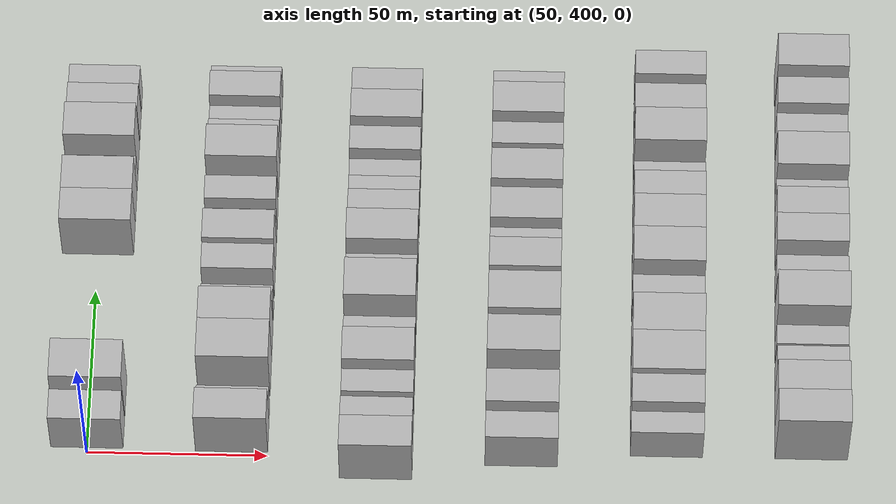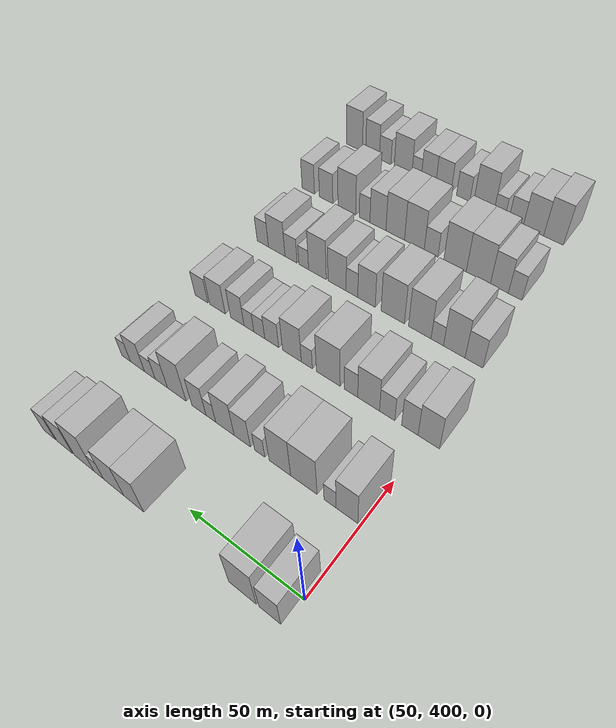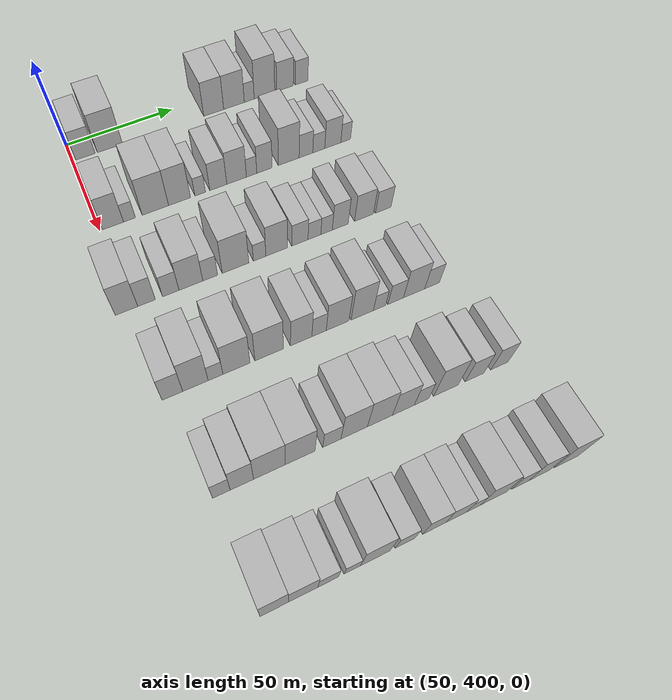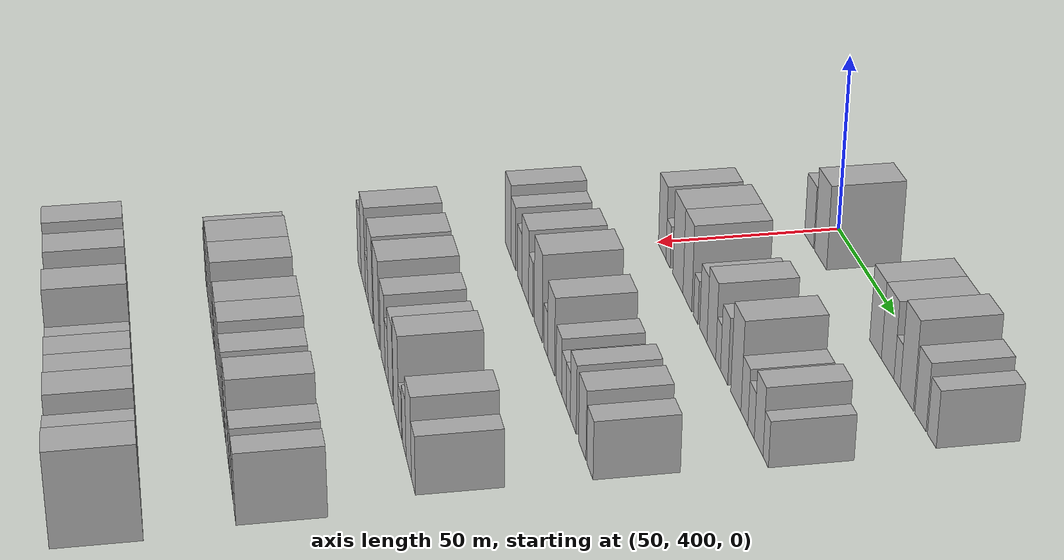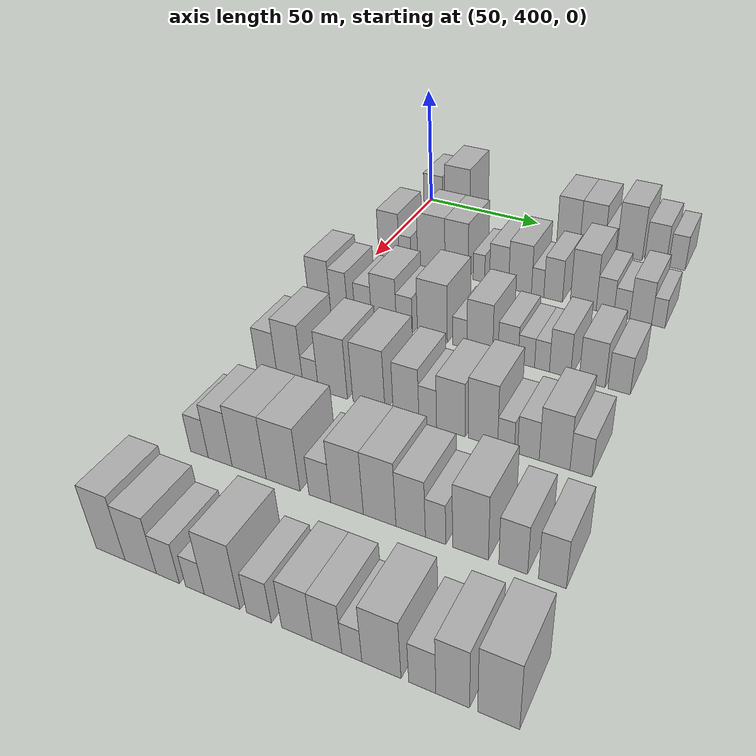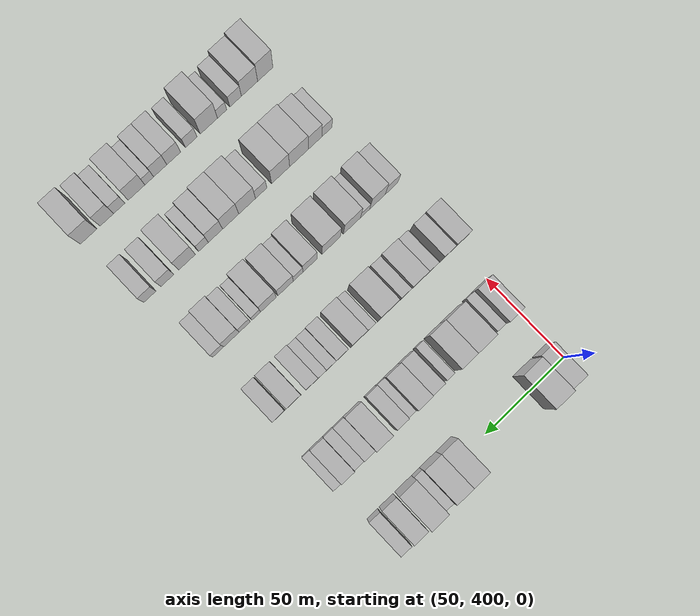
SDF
<sdf version="1.6">
 <world name="default">
  <model name="building_107">
   <static>1</static>
   <pose>50.0000 405.9339 0 0.000000 0.000000 0.000000</pose>
   <link name="link">
    <pose>0 0 9.00 0 0 0</pose>
    <collision name="collision"><geometry><box><size>20.0000 8.8763 18.0000</size></box></geometry></collision>
    <visual name="visual">
     <cast_shadows>0</cast_shadows>
     <geometry><box><size>20.0000 8.8763 18.0000</size></box></geometry>
     <material>
      <script>
       <uri>model://HANNAS_wall/materials/scripts</uri>
       <uri>model://HANNAS_wall/materials/textures</uri>
       <name>vrc/HANNAS_wall</name>
      </script>
     </material>
    </visual>
   </link>
  </model>
  <model name="building_108">
   <static>1</static>
   <pose>50.0000 417.1902 0 0.000000 0.000000 0.000000</pose>
   <link name="link">
    <pose>0 0 12.00 0 0 0</pose>
    <collision name="collision"><geometry><box><size>20.0000 11.6362 24.0000</size></box></geometry></collision>
    <visual name="visual">
     <cast_shadows>0</cast_shadows>
     <geometry><box><size>20.0000 11.6362 24.0000</size></box></geometry>
     <material>
      <script>
       <uri>model://HANNAS_wall/materials/scripts</uri>
       <uri>model://HANNAS_wall/materials/textures</uri>
       <name>vrc/HANNAS_wall</name>
      </script>
     </material>
    </visual>
   </link>
  </model>
  <model name="building_109">
   <static>1</static>
   <pose>50.0000 466.7922 0 0.000000 0.000000 0.000000</pose>
   <link name="link">
    <pose>0 0 10.50 0 0 0</pose>
    <collision name="collision"><geometry><box><size>20.0000 9.8560 21.0000</size></box></geometry></collision>
    <visual name="visual">
     <cast_shadows>0</cast_shadows>
     <geometry><box><size>20.0000 9.8560 21.0000</size></box></geometry>
     <material>
      <script>
       <uri>model://HANNAS_wall/materials/scripts</uri>
       <uri>model://HANNAS_wall/materials/textures</uri>
       <name>vrc/HANNAS_wall</name>
      </script>
     </material>
    </visual>
   </link>
  </model>
  <model name="building_110">
   <static>1</static>
   <pose>50.0000 476.8614 0 0.000000 0.000000 0.000000</pose>
   <link name="link">
    <pose>0 0 10.50 0 0 0</pose>
    <collision name="collision"><geometry><box><size>20.0000 10.2824 21.0000</size></box></geometry></collision>
    <visual name="visual">
     <cast_shadows>0</cast_shadows>
     <geometry><box><size>20.0000 10.2824 21.0000</size></box></geometry>
     <material>
      <script>
       <uri>model://HANNAS_wall/materials/scripts</uri>
       <uri>model://HANNAS_wall/materials/textures</uri>
       <name>vrc/HANNAS_wall</name>
      </script>
     </material>
    </visual>
   </link>
  </model>
  <model name="building_111">
   <static>1</static>
   <pose>50.0000 484.5039 0 0.000000 0.000000 0.000000</pose>
   <link name="link">
    <pose>0 0 6.00 0 0 0</pose>
    <collision name="collision"><geometry><box><size>20.0000 5.0026 12.0000</size></box></geometry></collision>
    <visual name="visual">
     <cast_shadows>0</cast_shadows>
     <geometry><box><size>20.0000 5.0026 12.0000</size></box></geometry>
     <material>
      <script>
       <uri>model://HANNAS_wall/materials/scripts</uri>
       <uri>model://HANNAS_wall/materials/textures</uri>
       <name>vrc/HANNAS_wall</name>
      </script>
     </material>
    </visual>
   </link>
  </model>
  <model name="building_112">
   <static>1</static>
   <pose>50.0000 492.2201 0 0.000000 0.000000 0.000000</pose>
   <link name="link">
    <pose>0 0 12.00 0 0 0</pose>
    <collision name="collision"><geometry><box><size>20.0000 10.4298 24.0000</size></box></geometry></collision>
    <visual name="visual">
     <cast_shadows>0</cast_shadows>
     <geometry><box><size>20.0000 10.4298 24.0000</size></box></geometry>
     <material>
      <script>
       <uri>model://HANNAS_wall/materials/scripts</uri>
       <uri>model://HANNAS_wall/materials/textures</uri>
       <name>vrc/HANNAS_wall</name>
      </script>
     </material>
    </visual>
   </link>
  </model>
  <model name="building_113">
   <static>1</static>
   <pose>50.0000 502.7301 0 0.000000 0.000000 0.000000</pose>
   <link name="link">
    <pose>0 0 9.00 0 0 0</pose>
    <collision name="collision"><geometry><box><size>20.0000 8.5904 18.0000</size></box></geometry></collision>
    <visual name="visual">
     <cast_shadows>0</cast_shadows>
     <geometry><box><size>20.0000 8.5904 18.0000</size></box></geometry>
     <material>
      <script>
       <uri>model://HANNAS_wall/materials/scripts</uri>
       <uri>model://HANNAS_wall/materials/textures</uri>
       <name>vrc/HANNAS_wall</name>
      </script>
     </material>
    </visual>
   </link>
  </model>
  <model name="building_114">
   <static>1</static>
   <pose>50.0000 511.2852 0 0.000000 0.000000 0.000000</pose>
   <link name="link">
    <pose>0 0 7.50 0 0 0</pose>
    <collision name="collision"><geometry><box><size>20.0000 6.5196 15.0000</size></box></geometry></collision>
    <visual name="visual">
     <cast_shadows>0</cast_shadows>
     <geometry><box><size>20.0000 6.5196 15.0000</size></box></geometry>
     <material>
      <script>
       <uri>model://HANNAS_wall/materials/scripts</uri>
       <uri>model://HANNAS_wall/materials/textures</uri>
       <name>vrc/HANNAS_wall</name>
      </script>
     </material>
    </visual>
   </link>
  </model>
  <model name="building_240">
   <static>1</static>
   <pose>90.0000 405.7554 0 0.000000 0.000000 0.000000</pose>
   <link name="link">
    <pose>0 0 10.50 0 0 0</pose>
    <collision name="collision"><geometry><box><size>20.0000 9.1564 21.0000</size></box></geometry></collision>
    <visual name="visual">
     <cast_shadows>0</cast_shadows>
     <geometry><box><size>20.0000 9.1564 21.0000</size></box></geometry>
     <material>
      <script>
       <uri>model://HANNAS_wall/materials/scripts</uri>
       <uri>model://HANNAS_wall/materials/textures</uri>
       <name>vrc/HANNAS_wall</name>
      </script>
     </material>
    </visual>
   </link>
  </model>
  <model name="building_241">
   <static>1</static>
   <pose>90.0000 412.9227 0 0.000000 0.000000 0.000000</pose>
   <link name="link">
    <pose>0 0 6.00 0 0 0</pose>
    <collision name="collision"><geometry><box><size>20.0000 5.1781 12.0000</size></box></geometry></collision>
    <visual name="visual">
     <cast_shadows>0</cast_shadows>
     <geometry><box><size>20.0000 5.1781 12.0000</size></box></geometry>
     <material>
      <script>
       <uri>model://HANNAS_wall/materials/scripts</uri>
       <uri>model://HANNAS_wall/materials/textures</uri>
       <name>vrc/HANNAS_wall</name>
      </script>
     </material>
    </visual>
   </link>
  </model>
  <model name="building_242">
   <static>1</static>
   <pose>90.0000 424.4047 0 0.000000 0.000000 0.000000</pose>
   <link name="link">
    <pose>0 0 12.00 0 0 0</pose>
    <collision name="collision"><geometry><box><size>20.0000 11.7859 24.0000</size></box></geometry></collision>
    <visual name="visual">
     <cast_shadows>0</cast_shadows>
     <geometry><box><size>20.0000 11.7859 24.0000</size></box></geometry>
     <material>
      <script>
       <uri>model://HANNAS_wall/materials/scripts</uri>
       <uri>model://HANNAS_wall/materials/textures</uri>
       <name>vrc/HANNAS_wall</name>
      </script>
     </material>
    </visual>
   </link>
  </model>
  <model name="building_243">
   <static>1</static>
   <pose>90.0000 435.2303 0 0.000000 0.000000 0.000000</pose>
   <link name="link">
    <pose>0 0 12.00 0 0 0</pose>
    <collision name="collision"><geometry><box><size>20.0000 9.8653 24.0000</size></box></geometry></collision>
    <visual name="visual">
     <cast_shadows>0</cast_shadows>
     <geometry><box><size>20.0000 9.8653 24.0000</size></box></geometry>
     <material>
      <script>
       <uri>model://HANNAS_wall/materials/scripts</uri>
       <uri>model://HANNAS_wall/materials/textures</uri>
       <name>vrc/HANNAS_wall</name>
      </script>
     </material>
    </visual>
   </link>
  </model>
  <model name="building_244">
   <static>1</static>
   <pose>90.0000 444.5867 0 0.000000 0.000000 0.000000</pose>
   <link name="link">
    <pose>0 0 6.00 0 0 0</pose>
    <collision name="collision"><geometry><box><size>20.0000 4.8476 12.0000</size></box></geometry></collision>
    <visual name="visual">
     <cast_shadows>0</cast_shadows>
     <geometry><box><size>20.0000 4.8476 12.0000</size></box></geometry>
     <material>
      <script>
       <uri>model://HANNAS_wall/materials/scripts</uri>
       <uri>model://HANNAS_wall/materials/textures</uri>
       <name>vrc/HANNAS_wall</name>
      </script>
     </material>
    </visual>
   </link>
  </model>
  <model name="building_245">
   <static>1</static>
   <pose>90.0000 452.9289 0 0.000000 0.000000 0.000000</pose>
   <link name="link">
    <pose>0 0 9.00 0 0 0</pose>
    <collision name="collision"><geometry><box><size>20.0000 7.8367 18.0000</size></box></geometry></collision>
    <visual name="visual">
     <cast_shadows>0</cast_shadows>
     <geometry><box><size>20.0000 7.8367 18.0000</size></box></geometry>
     <material>
      <script>
       <uri>model://HANNAS_wall/materials/scripts</uri>
       <uri>model://HANNAS_wall/materials/textures</uri>
       <name>vrc/HANNAS_wall</name>
      </script>
     </material>
    </visual>
   </link>
  </model>
  <model name="building_246">
   <static>1</static>
   <pose>90.0000 461.4424 0 0.000000 0.000000 0.000000</pose>
   <link name="link">
    <pose>0 0 10.50 0 0 0</pose>
    <collision name="collision"><geometry><box><size>20.0000 9.1904 21.0000</size></box></geometry></collision>
    <visual name="visual">
     <cast_shadows>0</cast_shadows>
     <geometry><box><size>20.0000 9.1904 21.0000</size></box></geometry>
     <material>
      <script>
       <uri>model://HANNAS_wall/materials/scripts</uri>
       <uri>model://HANNAS_wall/materials/textures</uri>
       <name>vrc/HANNAS_wall</name>
      </script>
     </material>
    </visual>
   </link>
  </model>
  <model name="building_247">
   <static>1</static>
   <pose>90.0000 468.4825 0 0.000000 0.000000 0.000000</pose>
   <link name="link">
    <pose>0 0 6.00 0 0 0</pose>
    <collision name="collision"><geometry><box><size>20.0000 4.8897 12.0000</size></box></geometry></collision>
    <visual name="visual">
     <cast_shadows>0</cast_shadows>
     <geometry><box><size>20.0000 4.8897 12.0000</size></box></geometry>
     <material>
      <script>
       <uri>model://HANNAS_wall/materials/scripts</uri>
       <uri>model://HANNAS_wall/materials/textures</uri>
       <name>vrc/HANNAS_wall</name>
      </script>
     </material>
    </visual>
   </link>
  </model>
  <model name="building_248">
   <static>1</static>
   <pose>90.0000 474.5832 0 0.000000 0.000000 0.000000</pose>
   <link name="link">
    <pose>0 0 9.00 0 0 0</pose>
    <collision name="collision"><geometry><box><size>20.0000 7.3118 18.0000</size></box></geometry></collision>
    <visual name="visual">
     <cast_shadows>0</cast_shadows>
     <geometry><box><size>20.0000 7.3118 18.0000</size></box></geometry>
     <material>
      <script>
       <uri>model://HANNAS_wall/materials/scripts</uri>
       <uri>model://HANNAS_wall/materials/textures</uri>
       <name>vrc/HANNAS_wall</name>
      </script>
     </material>
    </visual>
   </link>
  </model>
  <model name="building_249">
   <static>1</static>
   <pose>90.0000 486.2250 0 0.000000 0.000000 0.000000</pose>
   <link name="link">
    <pose>0 0 12.00 0 0 0</pose>
    <collision name="collision"><geometry><box><size>20.0000 9.9717 24.0000</size></box></geometry></collision>
    <visual name="visual">
     <cast_shadows>0</cast_shadows>
     <geometry><box><size>20.0000 9.9717 24.0000</size></box></geometry>
     <material>
      <script>
       <uri>model://HANNAS_wall/materials/scripts</uri>
       <uri>model://HANNAS_wall/materials/textures</uri>
       <name>vrc/HANNAS_wall</name>
      </script>
     </material>
    </visual>
   </link>
  </model>
  <model name="building_250">
   <static>1</static>
   <pose>90.0000 494.5533 0 0.000000 0.000000 0.000000</pose>
   <link name="link">
    <pose>0 0 7.50 0 0 0</pose>
    <collision name="collision"><geometry><box><size>20.0000 6.6850 15.0000</size></box></geometry></collision>
    <visual name="visual">
     <cast_shadows>0</cast_shadows>
     <geometry><box><size>20.0000 6.6850 15.0000</size></box></geometry>
     <material>
      <script>
       <uri>model://HANNAS_wall/materials/scripts</uri>
       <uri>model://HANNAS_wall/materials/textures</uri>
       <name>vrc/HANNAS_wall</name>
      </script>
     </material>
    </visual>
   </link>
  </model>
  <model name="building_251">
   <static>1</static>
   <pose>90.0000 500.8529 0 0.000000 0.000000 0.000000</pose>
   <link name="link">
    <pose>0 0 6.00 0 0 0</pose>
    <collision name="collision"><geometry><box><size>20.0000 5.9141 12.0000</size></box></geometry></collision>
    <visual name="visual">
     <cast_shadows>0</cast_shadows>
     <geometry><box><size>20.0000 5.9141 12.0000</size></box></geometry>
     <material>
      <script>
       <uri>model://HANNAS_wall/materials/scripts</uri>
       <uri>model://HANNAS_wall/materials/textures</uri>
       <name>vrc/HANNAS_wall</name>
      </script>
     </material>
    </visual>
   </link>
  </model>
  <model name="building_252">
   <static>1</static>
   <pose>90.0000 507.8101 0 0.000000 0.000000 0.000000</pose>
   <link name="link">
    <pose>0 0 9.00 0 0 0</pose>
    <collision name="collision"><geometry><box><size>20.0000 8.0003 18.0000</size></box></geometry></collision>
    <visual name="visual">
     <cast_shadows>0</cast_shadows>
     <geometry><box><size>20.0000 8.0003 18.0000</size></box></geometry>
     <material>
      <script>
       <uri>model://HANNAS_wall/materials/scripts</uri>
       <uri>model://HANNAS_wall/materials/textures</uri>
       <name>vrc/HANNAS_wall</name>
      </script>
     </material>
    </visual>
   </link>
  </model>
  <model name="building_253">
   <static>1</static>
   <pose>90.0000 514.2389 0 0.000000 0.000000 0.000000</pose>
   <link name="link">
    <pose>0 0 6.00 0 0 0</pose>
    <collision name="collision"><geometry><box><size>20.0000 4.8574 12.0000</size></box></geometry></collision>
    <visual name="visual">
     <cast_shadows>0</cast_shadows>
     <geometry><box><size>20.0000 4.8574 12.0000</size></box></geometry>
     <material>
      <script>
       <uri>model://HANNAS_wall/materials/scripts</uri>
       <uri>model://HANNAS_wall/materials/textures</uri>
       <name>vrc/HANNAS_wall</name>
      </script>
     </material>
    </visual>
   </link>
  </model>
  <model name="building_371">
   <static>1</static>
   <pose>130.0000 398.3900 0 0.000000 0.000000 0.000000</pose>
   <link name="link">
    <pose>0 0 10.50 0 0 0</pose>
    <collision name="collision"><geometry><box><size>20.0000 9.1923 21.0000</size></box></geometry></collision>
    <visual name="visual">
     <cast_shadows>0</cast_shadows>
     <geometry><box><size>20.0000 9.1923 21.0000</size></box></geometry>
     <material>
      <script>
       <uri>model://HANNAS_wall/materials/scripts</uri>
       <uri>model://HANNAS_wall/materials/textures</uri>
       <name>vrc/HANNAS_wall</name>
      </script>
     </material>
    </visual>
   </link>
  </model>
  <model name="building_372">
   <static>1</static>
   <pose>130.0000 406.6004 0 0.000000 0.000000 0.000000</pose>
   <link name="link">
    <pose>0 0 9.00 0 0 0</pose>
    <collision name="collision"><geometry><box><size>20.0000 7.2286 18.0000</size></box></geometry></collision>
    <visual name="visual">
     <cast_shadows>0</cast_shadows>
     <geometry><box><size>20.0000 7.2286 18.0000</size></box></geometry>
     <material>
      <script>
       <uri>model://HANNAS_wall/materials/scripts</uri>
       <uri>model://HANNAS_wall/materials/textures</uri>
       <name>vrc/HANNAS_wall</name>
      </script>
     </material>
    </visual>
   </link>
  </model>
  <model name="building_373">
   <static>1</static>
   <pose>130.0000 416.6456 0 0.000000 0.000000 0.000000</pose>
   <link name="link">
    <pose>0 0 7.50 0 0 0</pose>
    <collision name="collision"><geometry><box><size>20.0000 6.8618 15.0000</size></box></geometry></collision>
    <visual name="visual">
     <cast_shadows>0</cast_shadows>
     <geometry><box><size>20.0000 6.8618 15.0000</size></box></geometry>
     <material>
      <script>
       <uri>model://HANNAS_wall/materials/scripts</uri>
       <uri>model://HANNAS_wall/materials/textures</uri>
       <name>vrc/HANNAS_wall</name>
      </script>
     </material>
    </visual>
   </link>
  </model>
  <model name="building_374">
   <static>1</static>
   <pose>130.0000 425.1166 0 0.000000 0.000000 0.000000</pose>
   <link name="link">
    <pose>0 0 10.50 0 0 0</pose>
    <collision name="collision"><geometry><box><size>20.0000 10.0801 21.0000</size></box></geometry></collision>
    <visual name="visual">
     <cast_shadows>0</cast_shadows>
     <geometry><box><size>20.0000 10.0801 21.0000</size></box></geometry>
     <material>
      <script>
       <uri>model://HANNAS_wall/materials/scripts</uri>
       <uri>model://HANNAS_wall/materials/textures</uri>
       <name>vrc/HANNAS_wall</name>
      </script>
     </material>
    </visual>
   </link>
  </model>
  <model name="building_375">
   <static>1</static>
   <pose>130.0000 433.3288 0 0.000000 0.000000 0.000000</pose>
   <link name="link">
    <pose>0 0 7.50 0 0 0</pose>
    <collision name="collision"><geometry><box><size>20.0000 6.3443 15.0000</size></box></geometry></collision>
    <visual name="visual">
     <cast_shadows>0</cast_shadows>
     <geometry><box><size>20.0000 6.3443 15.0000</size></box></geometry>
     <material>
      <script>
       <uri>model://HANNAS_wall/materials/scripts</uri>
       <uri>model://HANNAS_wall/materials/textures</uri>
       <name>vrc/HANNAS_wall</name>
      </script>
     </material>
    </visual>
   </link>
  </model>
  <model name="building_376">
   <static>1</static>
   <pose>130.0000 444.2712 0 0.000000 0.000000 0.000000</pose>
   <link name="link">
    <pose>0 0 12.00 0 0 0</pose>
    <collision name="collision"><geometry><box><size>20.0000 11.5405 24.0000</size></box></geometry></collision>
    <visual name="visual">
     <cast_shadows>0</cast_shadows>
     <geometry><box><size>20.0000 11.5405 24.0000</size></box></geometry>
     <material>
      <script>
       <uri>model://HANNAS_wall/materials/scripts</uri>
       <uri>model://HANNAS_wall/materials/textures</uri>
       <name>vrc/HANNAS_wall</name>
      </script>
     </material>
    </visual>
   </link>
  </model>
  <model name="building_377">
   <static>1</static>
   <pose>130.0000 454.8086 0 0.000000 0.000000 0.000000</pose>
   <link name="link">
    <pose>0 0 6.00 0 0 0</pose>
    <collision name="collision"><geometry><box><size>20.0000 5.5344 12.0000</size></box></geometry></collision>
    <visual name="visual">
     <cast_shadows>0</cast_shadows>
     <geometry><box><size>20.0000 5.5344 12.0000</size></box></geometry>
     <material>
      <script>
       <uri>model://HANNAS_wall/materials/scripts</uri>
       <uri>model://HANNAS_wall/materials/textures</uri>
       <name>vrc/HANNAS_wall</name>
      </script>
     </material>
    </visual>
   </link>
  </model>
  <model name="building_378">
   <static>1</static>
   <pose>130.0000 462.3660 0 0.000000 0.000000 0.000000</pose>
   <link name="link">
    <pose>0 0 10.50 0 0 0</pose>
    <collision name="collision"><geometry><box><size>20.0000 9.5805 21.0000</size></box></geometry></collision>
    <visual name="visual">
     <cast_shadows>0</cast_shadows>
     <geometry><box><size>20.0000 9.5805 21.0000</size></box></geometry>
     <material>
      <script>
       <uri>model://HANNAS_wall/materials/scripts</uri>
       <uri>model://HANNAS_wall/materials/textures</uri>
       <name>vrc/HANNAS_wall</name>
      </script>
     </material>
    </visual>
   </link>
  </model>
  <model name="building_379">
   <static>1</static>
   <pose>130.0000 472.8237 0 0.000000 0.000000 0.000000</pose>
   <link name="link">
    <pose>0 0 7.50 0 0 0</pose>
    <collision name="collision"><geometry><box><size>20.0000 7.3349 15.0000</size></box></geometry></collision>
    <visual name="visual">
     <cast_shadows>0</cast_shadows>
     <geometry><box><size>20.0000 7.3349 15.0000</size></box></geometry>
     <material>
      <script>
       <uri>model://HANNAS_wall/materials/scripts</uri>
       <uri>model://HANNAS_wall/materials/textures</uri>
       <name>vrc/HANNAS_wall</name>
      </script>
     </material>
    </visual>
   </link>
  </model>
  <model name="building_380">
   <static>1</static>
   <pose>130.0000 479.4262 0 0.000000 0.000000 0.000000</pose>
   <link name="link">
    <pose>0 0 6.00 0 0 0</pose>
    <collision name="collision"><geometry><box><size>20.0000 5.8700 12.0000</size></box></geometry></collision>
    <visual name="visual">
     <cast_shadows>0</cast_shadows>
     <geometry><box><size>20.0000 5.8700 12.0000</size></box></geometry>
     <material>
      <script>
       <uri>model://HANNAS_wall/materials/scripts</uri>
       <uri>model://HANNAS_wall/materials/textures</uri>
       <name>vrc/HANNAS_wall</name>
      </script>
     </material>
    </visual>
   </link>
  </model>
  <model name="building_381">
   <static>1</static>
   <pose>130.0000 485.0026 0 0.000000 0.000000 0.000000</pose>
   <link name="link">
    <pose>0 0 6.00 0 0 0</pose>
    <collision name="collision"><geometry><box><size>20.0000 5.2828 12.0000</size></box></geometry></collision>
    <visual name="visual">
     <cast_shadows>0</cast_shadows>
     <geometry><box><size>20.0000 5.2828 12.0000</size></box></geometry>
     <material>
      <script>
       <uri>model://HANNAS_wall/materials/scripts</uri>
       <uri>model://HANNAS_wall/materials/textures</uri>
       <name>vrc/HANNAS_wall</name>
      </script>
     </material>
    </visual>
   </link>
  </model>
  <model name="building_382">
   <static>1</static>
   <pose>130.0000 491.3400 0 0.000000 0.000000 0.000000</pose>
   <link name="link">
    <pose>0 0 9.00 0 0 0</pose>
    <collision name="collision"><geometry><box><size>20.0000 7.3919 18.0000</size></box></geometry></collision>
    <visual name="visual">
     <cast_shadows>0</cast_shadows>
     <geometry><box><size>20.0000 7.3919 18.0000</size></box></geometry>
     <material>
      <script>
       <uri>model://HANNAS_wall/materials/scripts</uri>
       <uri>model://HANNAS_wall/materials/textures</uri>
       <name>vrc/HANNAS_wall</name>
      </script>
     </material>
    </visual>
   </link>
  </model>
  <model name="building_383">
   <static>1</static>
   <pose>130.0000 502.4797 0 0.000000 0.000000 0.000000</pose>
   <link name="link">
    <pose>0 0 9.00 0 0 0</pose>
    <collision name="collision"><geometry><box><size>20.0000 8.8875 18.0000</size></box></geometry></collision>
    <visual name="visual">
     <cast_shadows>0</cast_shadows>
     <geometry><box><size>20.0000 8.8875 18.0000</size></box></geometry>
     <material>
      <script>
       <uri>model://HANNAS_wall/materials/scripts</uri>
       <uri>model://HANNAS_wall/materials/textures</uri>
       <name>vrc/HANNAS_wall</name>
      </script>
     </material>
    </visual>
   </link>
  </model>
  <model name="building_384">
   <static>1</static>
   <pose>130.0000 511.6440 0 0.000000 0.000000 0.000000</pose>
   <link name="link">
    <pose>0 0 7.50 0 0 0</pose>
    <collision name="collision"><geometry><box><size>20.0000 7.4411 15.0000</size></box></geometry></collision>
    <visual name="visual">
     <cast_shadows>0</cast_shadows>
     <geometry><box><size>20.0000 7.4411 15.0000</size></box></geometry>
     <material>
      <script>
       <uri>model://HANNAS_wall/materials/scripts</uri>
       <uri>model://HANNAS_wall/materials/textures</uri>
       <name>vrc/HANNAS_wall</name>
      </script>
     </material>
    </visual>
   </link>
  </model>
  <model name="building_512">
   <static>1</static>
   <pose>170.0000 402.6518 0 0.000000 0.000000 0.000000</pose>
   <link name="link">
    <pose>0 0 9.00 0 0 0</pose>
    <collision name="collision"><geometry><box><size>20.0000 8.0328 18.0000</size></box></geometry></collision>
    <visual name="visual">
     <cast_shadows>0</cast_shadows>
     <geometry><box><size>20.0000 8.0328 18.0000</size></box></geometry>
     <material>
      <script>
       <uri>model://HANNAS_wall/materials/scripts</uri>
       <uri>model://HANNAS_wall/materials/textures</uri>
       <name>vrc/HANNAS_wall</name>
      </script>
     </material>
    </visual>
   </link>
  </model>
  <model name="building_513">
   <static>1</static>
   <pose>170.0000 411.6531 0 0.000000 0.000000 0.000000</pose>
   <link name="link">
    <pose>0 0 12.00 0 0 0</pose>
    <collision name="collision"><geometry><box><size>20.0000 9.9699 24.0000</size></box></geometry></collision>
    <visual name="visual">
     <cast_shadows>0</cast_shadows>
     <geometry><box><size>20.0000 9.9699 24.0000</size></box></geometry>
     <material>
      <script>
       <uri>model://HANNAS_wall/materials/scripts</uri>
       <uri>model://HANNAS_wall/materials/textures</uri>
       <name>vrc/HANNAS_wall</name>
      </script>
     </material>
    </visual>
   </link>
  </model>
  <model name="building_514">
   <static>1</static>
   <pose>170.0000 419.5729 0 0.000000 0.000000 0.000000</pose>
   <link name="link">
    <pose>0 0 6.00 0 0 0</pose>
    <collision name="collision"><geometry><box><size>20.0000 5.8697 12.0000</size></box></geometry></collision>
    <visual name="visual">
     <cast_shadows>0</cast_shadows>
     <geometry><box><size>20.0000 5.8697 12.0000</size></box></geometry>
     <material>
      <script>
       <uri>model://HANNAS_wall/materials/scripts</uri>
       <uri>model://HANNAS_wall/materials/textures</uri>
       <name>vrc/HANNAS_wall</name>
      </script>
     </material>
    </visual>
   </link>
  </model>
  <model name="building_515">
   <static>1</static>
   <pose>170.0000 427.9568 0 0.000000 0.000000 0.000000</pose>
   <link name="link">
    <pose>0 0 12.00 0 0 0</pose>
    <collision name="collision"><geometry><box><size>20.0000 10.8982 24.0000</size></box></geometry></collision>
    <visual name="visual">
     <cast_shadows>0</cast_shadows>
     <geometry><box><size>20.0000 10.8982 24.0000</size></box></geometry>
     <material>
      <script>
       <uri>model://HANNAS_wall/materials/scripts</uri>
       <uri>model://HANNAS_wall/materials/textures</uri>
       <name>vrc/HANNAS_wall</name>
      </script>
     </material>
    </visual>
   </link>
  </model>
  <model name="building_516">
   <static>1</static>
   <pose>170.0000 441.2367 0 0.000000 0.000000 0.000000</pose>
   <link name="link">
    <pose>0 0 12.00 0 0 0</pose>
    <collision name="collision"><geometry><box><size>20.0000 11.6615 24.0000</size></box></geometry></collision>
    <visual name="visual">
     <cast_shadows>0</cast_shadows>
     <geometry><box><size>20.0000 11.6615 24.0000</size></box></geometry>
     <material>
      <script>
       <uri>model://HANNAS_wall/materials/scripts</uri>
       <uri>model://HANNAS_wall/materials/textures</uri>
       <name>vrc/HANNAS_wall</name>
      </script>
     </material>
    </visual>
   </link>
  </model>
  <model name="building_517">
   <static>1</static>
   <pose>170.0000 454.5704 0 0.000000 0.000000 0.000000</pose>
   <link name="link">
    <pose>0 0 10.50 0 0 0</pose>
    <collision name="collision"><geometry><box><size>20.0000 9.0061 21.0000</size></box></geometry></collision>
    <visual name="visual">
     <cast_shadows>0</cast_shadows>
     <geometry><box><size>20.0000 9.0061 21.0000</size></box></geometry>
     <material>
      <script>
       <uri>model://HANNAS_wall/materials/scripts</uri>
       <uri>model://HANNAS_wall/materials/textures</uri>
       <name>vrc/HANNAS_wall</name>
      </script>
     </material>
    </visual>
   </link>
  </model>
  <model name="building_518">
   <static>1</static>
   <pose>170.0000 462.1140 0 0.000000 0.000000 0.000000</pose>
   <link name="link">
    <pose>0 0 7.50 0 0 0</pose>
    <collision name="collision"><geometry><box><size>20.0000 6.0810 15.0000</size></box></geometry></collision>
    <visual name="visual">
     <cast_shadows>0</cast_shadows>
     <geometry><box><size>20.0000 6.0810 15.0000</size></box></geometry>
     <material>
      <script>
       <uri>model://HANNAS_wall/materials/scripts</uri>
       <uri>model://HANNAS_wall/materials/textures</uri>
       <name>vrc/HANNAS_wall</name>
      </script>
     </material>
    </visual>
   </link>
  </model>
  <model name="building_519">
   <static>1</static>
   <pose>170.0000 470.0007 0 0.000000 0.000000 0.000000</pose>
   <link name="link">
    <pose>0 0 10.50 0 0 0</pose>
    <collision name="collision"><geometry><box><size>20.0000 9.6924 21.0000</size></box></geometry></collision>
    <visual name="visual">
     <cast_shadows>0</cast_shadows>
     <geometry><box><size>20.0000 9.6924 21.0000</size></box></geometry>
     <material>
      <script>
       <uri>model://HANNAS_wall/materials/scripts</uri>
       <uri>model://HANNAS_wall/materials/textures</uri>
       <name>vrc/HANNAS_wall</name>
      </script>
     </material>
    </visual>
   </link>
  </model>
  <model name="building_520">
   <static>1</static>
   <pose>170.0000 480.7211 0 0.000000 0.000000 0.000000</pose>
   <link name="link">
    <pose>0 0 12.00 0 0 0</pose>
    <collision name="collision"><geometry><box><size>20.0000 9.7484 24.0000</size></box></geometry></collision>
    <visual name="visual">
     <cast_shadows>0</cast_shadows>
     <geometry><box><size>20.0000 9.7484 24.0000</size></box></geometry>
     <material>
      <script>
       <uri>model://HANNAS_wall/materials/scripts</uri>
       <uri>model://HANNAS_wall/materials/textures</uri>
       <name>vrc/HANNAS_wall</name>
      </script>
     </material>
    </visual>
   </link>
  </model>
  <model name="building_521">
   <static>1</static>
   <pose>170.0000 488.3156 0 0.000000 0.000000 0.000000</pose>
   <link name="link">
    <pose>0 0 6.00 0 0 0</pose>
    <collision name="collision"><geometry><box><size>20.0000 5.4406 12.0000</size></box></geometry></collision>
    <visual name="visual">
     <cast_shadows>0</cast_shadows>
     <geometry><box><size>20.0000 5.4406 12.0000</size></box></geometry>
     <material>
      <script>
       <uri>model://HANNAS_wall/materials/scripts</uri>
       <uri>model://HANNAS_wall/materials/textures</uri>
       <name>vrc/HANNAS_wall</name>
      </script>
     </material>
    </visual>
   </link>
  </model>
  <model name="building_522">
   <static>1</static>
   <pose>170.0000 495.4882 0 0.000000 0.000000 0.000000</pose>
   <link name="link">
    <pose>0 0 7.50 0 0 0</pose>
    <collision name="collision"><geometry><box><size>20.0000 6.9046 15.0000</size></box></geometry></collision>
    <visual name="visual">
     <cast_shadows>0</cast_shadows>
     <geometry><box><size>20.0000 6.9046 15.0000</size></box></geometry>
     <material>
      <script>
       <uri>model://HANNAS_wall/materials/scripts</uri>
       <uri>model://HANNAS_wall/materials/textures</uri>
       <name>vrc/HANNAS_wall</name>
      </script>
     </material>
    </visual>
   </link>
  </model>
  <model name="building_523">
   <static>1</static>
   <pose>170.0000 503.7473 0 0.000000 0.000000 0.000000</pose>
   <link name="link">
    <pose>0 0 10.50 0 0 0</pose>
    <collision name="collision"><geometry><box><size>20.0000 9.6135 21.0000</size></box></geometry></collision>
    <visual name="visual">
     <cast_shadows>0</cast_shadows>
     <geometry><box><size>20.0000 9.6135 21.0000</size></box></geometry>
     <material>
      <script>
       <uri>model://HANNAS_wall/materials/scripts</uri>
       <uri>model://HANNAS_wall/materials/textures</uri>
       <name>vrc/HANNAS_wall</name>
      </script>
     </material>
    </visual>
   </link>
  </model>
  <model name="building_524">
   <static>1</static>
   <pose>170.0000 511.9179 0 0.000000 0.000000 0.000000</pose>
   <link name="link">
    <pose>0 0 7.50 0 0 0</pose>
    <collision name="collision"><geometry><box><size>20.0000 6.7276 15.0000</size></box></geometry></collision>
    <visual name="visual">
     <cast_shadows>0</cast_shadows>
     <geometry><box><size>20.0000 6.7276 15.0000</size></box></geometry>
     <material>
      <script>
       <uri>model://HANNAS_wall/materials/scripts</uri>
       <uri>model://HANNAS_wall/materials/textures</uri>
       <name>vrc/HANNAS_wall</name>
      </script>
     </material>
    </visual>
   </link>
  </model>
  <model name="building_647">
   <static>1</static>
   <pose>210.0000 405.6749 0 0.000000 0.000000 0.000000</pose>
   <link name="link">
    <pose>0 0 7.50 0 0 0</pose>
    <collision name="collision"><geometry><box><size>20.0000 6.4756 15.0000</size></box></geometry></collision>
    <visual name="visual">
     <cast_shadows>0</cast_shadows>
     <geometry><box><size>20.0000 6.4756 15.0000</size></box></geometry>
     <material>
      <script>
       <uri>model://HANNAS_wall/materials/scripts</uri>
       <uri>model://HANNAS_wall/materials/textures</uri>
       <name>vrc/HANNAS_wall</name>
      </script>
     </material>
    </visual>
   </link>
  </model>
  <model name="building_648">
   <static>1</static>
   <pose>210.0000 413.2520 0 0.000000 0.000000 0.000000</pose>
   <link name="link">
    <pose>0 0 10.50 0 0 0</pose>
    <collision name="collision"><geometry><box><size>20.0000 8.6786 21.0000</size></box></geometry></collision>
    <visual name="visual">
     <cast_shadows>0</cast_shadows>
     <geometry><box><size>20.0000 8.6786 21.0000</size></box></geometry>
     <material>
      <script>
       <uri>model://HANNAS_wall/materials/scripts</uri>
       <uri>model://HANNAS_wall/materials/textures</uri>
       <name>vrc/HANNAS_wall</name>
      </script>
     </material>
    </visual>
   </link>
  </model>
  <model name="building_649">
   <static>1</static>
   <pose>210.0000 423.5786 0 0.000000 0.000000 0.000000</pose>
   <link name="link">
    <pose>0 0 12.00 0 0 0</pose>
    <collision name="collision"><geometry><box><size>20.0000 11.9747 24.0000</size></box></geometry></collision>
    <visual name="visual">
     <cast_shadows>0</cast_shadows>
     <geometry><box><size>20.0000 11.9747 24.0000</size></box></geometry>
     <material>
      <script>
       <uri>model://HANNAS_wall/materials/scripts</uri>
       <uri>model://HANNAS_wall/materials/textures</uri>
       <name>vrc/HANNAS_wall</name>
      </script>
     </material>
    </visual>
   </link>
  </model>
  <model name="building_650">
   <static>1</static>
   <pose>210.0000 435.3145 0 0.000000 0.000000 0.000000</pose>
   <link name="link">
    <pose>0 0 12.00 0 0 0</pose>
    <collision name="collision"><geometry><box><size>20.0000 11.4971 24.0000</size></box></geometry></collision>
    <visual name="visual">
     <cast_shadows>0</cast_shadows>
     <geometry><box><size>20.0000 11.4971 24.0000</size></box></geometry>
     <material>
      <script>
       <uri>model://HANNAS_wall/materials/scripts</uri>
       <uri>model://HANNAS_wall/materials/textures</uri>
       <name>vrc/HANNAS_wall</name>
      </script>
     </material>
    </visual>
   </link>
  </model>
  <model name="building_651">
   <static>1</static>
   <pose>210.0000 447.6656 0 0.000000 0.000000 0.000000</pose>
   <link name="link">
    <pose>0 0 7.50 0 0 0</pose>
    <collision name="collision"><geometry><box><size>20.0000 7.2050 15.0000</size></box></geometry></collision>
    <visual name="visual">
     <cast_shadows>0</cast_shadows>
     <geometry><box><size>20.0000 7.2050 15.0000</size></box></geometry>
     <material>
      <script>
       <uri>model://HANNAS_wall/materials/scripts</uri>
       <uri>model://HANNAS_wall/materials/textures</uri>
       <name>vrc/HANNAS_wall</name>
      </script>
     </material>
    </visual>
   </link>
  </model>
  <model name="building_652">
   <static>1</static>
   <pose>210.0000 456.5417 0 0.000000 0.000000 0.000000</pose>
   <link name="link">
    <pose>0 0 12.00 0 0 0</pose>
    <collision name="collision"><geometry><box><size>20.0000 10.5471 24.0000</size></box></geometry></collision>
    <visual name="visual">
     <cast_shadows>0</cast_shadows>
     <geometry><box><size>20.0000 10.5471 24.0000</size></box></geometry>
     <material>
      <script>
       <uri>model://HANNAS_wall/materials/scripts</uri>
       <uri>model://HANNAS_wall/materials/textures</uri>
       <name>vrc/HANNAS_wall</name>
      </script>
     </material>
    </visual>
   </link>
  </model>
  <model name="building_653">
   <static>1</static>
   <pose>210.0000 466.9299 0 0.000000 0.000000 0.000000</pose>
   <link name="link">
    <pose>0 0 12.00 0 0 0</pose>
    <collision name="collision"><geometry><box><size>20.0000 10.2292 24.0000</size></box></geometry></collision>
    <visual name="visual">
     <cast_shadows>0</cast_shadows>
     <geometry><box><size>20.0000 10.2292 24.0000</size></box></geometry>
     <material>
      <script>
       <uri>model://HANNAS_wall/materials/scripts</uri>
       <uri>model://HANNAS_wall/materials/textures</uri>
       <name>vrc/HANNAS_wall</name>
      </script>
     </material>
    </visual>
   </link>
  </model>
  <model name="building_654">
   <static>1</static>
   <pose>210.0000 476.5402 0 0.000000 0.000000 0.000000</pose>
   <link name="link">
    <pose>0 0 10.50 0 0 0</pose>
    <collision name="collision"><geometry><box><size>20.0000 8.9913 21.0000</size></box></geometry></collision>
    <visual name="visual">
     <cast_shadows>0</cast_shadows>
     <geometry><box><size>20.0000 8.9913 21.0000</size></box></geometry>
     <material>
      <script>
       <uri>model://HANNAS_wall/materials/scripts</uri>
       <uri>model://HANNAS_wall/materials/textures</uri>
       <name>vrc/HANNAS_wall</name>
      </script>
     </material>
    </visual>
   </link>
  </model>
  <model name="building_655">
   <static>1</static>
   <pose>210.0000 484.0814 0 0.000000 0.000000 0.000000</pose>
   <link name="link">
    <pose>0 0 7.50 0 0 0</pose>
    <collision name="collision"><geometry><box><size>20.0000 6.0912 15.0000</size></box></geometry></collision>
    <visual name="visual">
     <cast_shadows>0</cast_shadows>
     <geometry><box><size>20.0000 6.0912 15.0000</size></box></geometry>
     <material>
      <script>
       <uri>model://HANNAS_wall/materials/scripts</uri>
       <uri>model://HANNAS_wall/materials/textures</uri>
       <name>vrc/HANNAS_wall</name>
      </script>
     </material>
    </visual>
   </link>
  </model>
  <model name="building_656">
   <static>1</static>
   <pose>210.0000 494.3374 0 0.000000 0.000000 0.000000</pose>
   <link name="link">
    <pose>0 0 12.00 0 0 0</pose>
    <collision name="collision"><geometry><box><size>20.0000 10.4207 24.0000</size></box></geometry></collision>
    <visual name="visual">
     <cast_shadows>0</cast_shadows>
     <geometry><box><size>20.0000 10.4207 24.0000</size></box></geometry>
     <material>
      <script>
       <uri>model://HANNAS_wall/materials/scripts</uri>
       <uri>model://HANNAS_wall/materials/textures</uri>
       <name>vrc/HANNAS_wall</name>
      </script>
     </material>
    </visual>
   </link>
  </model>
  <model name="building_657">
   <static>1</static>
   <pose>210.0000 506.5974 0 0.000000 0.000000 0.000000</pose>
   <link name="link">
    <pose>0 0 9.00 0 0 0</pose>
    <collision name="collision"><geometry><box><size>20.0000 8.0994 18.0000</size></box></geometry></collision>
    <visual name="visual">
     <cast_shadows>0</cast_shadows>
     <geometry><box><size>20.0000 8.0994 18.0000</size></box></geometry>
     <material>
      <script>
       <uri>model://HANNAS_wall/materials/scripts</uri>
       <uri>model://HANNAS_wall/materials/textures</uri>
       <name>vrc/HANNAS_wall</name>
      </script>
     </material>
    </visual>
   </link>
  </model>
  <model name="building_658">
   <static>1</static>
   <pose>210.0000 517.4482 0 0.000000 0.000000 0.000000</pose>
   <link name="link">
    <pose>0 0 9.00 0 0 0</pose>
    <collision name="collision"><geometry><box><size>20.0000 7.6021 18.0000</size></box></geometry></collision>
    <visual name="visual">
     <cast_shadows>0</cast_shadows>
     <geometry><box><size>20.0000 7.6021 18.0000</size></box></geometry>
     <material>
      <script>
       <uri>model://HANNAS_wall/materials/scripts</uri>
       <uri>model://HANNAS_wall/materials/textures</uri>
       <name>vrc/HANNAS_wall</name>
      </script>
     </material>
    </visual>
   </link>
  </model>
  <model name="building_788">
   <static>1</static>
   <pose>250.0000 407.4531 0 0.000000 0.000000 0.000000</pose>
   <link name="link">
    <pose>0 0 12.00 0 0 0</pose>
    <collision name="collision"><geometry><box><size>20.0000 9.7997 24.0000</size></box></geometry></collision>
    <visual name="visual">
     <cast_shadows>0</cast_shadows>
     <geometry><box><size>20.0000 9.7997 24.0000</size></box></geometry>
     <material>
      <script>
       <uri>model://HANNAS_wall/materials/scripts</uri>
       <uri>model://HANNAS_wall/materials/textures</uri>
       <name>vrc/HANNAS_wall</name>
      </script>
     </material>
    </visual>
   </link>
  </model>
  <model name="building_789">
   <static>1</static>
   <pose>250.0000 417.5532 0 0.000000 0.000000 0.000000</pose>
   <link name="link">
    <pose>0 0 10.50 0 0 0</pose>
    <collision name="collision"><geometry><box><size>20.0000 10.4005 21.0000</size></box></geometry></collision>
    <visual name="visual">
     <cast_shadows>0</cast_shadows>
     <geometry><box><size>20.0000 10.4005 21.0000</size></box></geometry>
     <material>
      <script>
       <uri>model://HANNAS_wall/materials/scripts</uri>
       <uri>model://HANNAS_wall/materials/textures</uri>
       <name>vrc/HANNAS_wall</name>
      </script>
     </material>
    </visual>
   </link>
  </model>
  <model name="building_790">
   <static>1</static>
   <pose>250.0000 426.4578 0 0.000000 0.000000 0.000000</pose>
   <link name="link">
    <pose>0 0 7.50 0 0 0</pose>
    <collision name="collision"><geometry><box><size>20.0000 7.4088 15.0000</size></box></geometry></collision>
    <visual name="visual">
     <cast_shadows>0</cast_shadows>
     <geometry><box><size>20.0000 7.4088 15.0000</size></box></geometry>
     <material>
      <script>
       <uri>model://HANNAS_wall/materials/scripts</uri>
       <uri>model://HANNAS_wall/materials/textures</uri>
       <name>vrc/HANNAS_wall</name>
      </script>
     </material>
    </visual>
   </link>
  </model>
  <model name="building_791">
   <static>1</static>
   <pose>250.0000 435.1090 0 0.000000 0.000000 0.000000</pose>
   <link name="link">
    <pose>0 0 6.00 0 0 0</pose>
    <collision name="collision"><geometry><box><size>20.0000 5.8937 12.0000</size></box></geometry></collision>
    <visual name="visual">
     <cast_shadows>0</cast_shadows>
     <geometry><box><size>20.0000 5.8937 12.0000</size></box></geometry>
     <material>
      <script>
       <uri>model://HANNAS_wall/materials/scripts</uri>
       <uri>model://HANNAS_wall/materials/textures</uri>
       <name>vrc/HANNAS_wall</name>
      </script>
     </material>
    </visual>
   </link>
  </model>
  <model name="building_792">
   <static>1</static>
   <pose>250.0000 443.5350 0 0.000000 0.000000 0.000000</pose>
   <link name="link">
    <pose>0 0 12.00 0 0 0</pose>
    <collision name="collision"><geometry><box><size>20.0000 10.9581 24.0000</size></box></geometry></collision>
    <visual name="visual">
     <cast_shadows>0</cast_shadows>
     <geometry><box><size>20.0000 10.9581 24.0000</size></box></geometry>
     <material>
      <script>
       <uri>model://HANNAS_wall/materials/scripts</uri>
       <uri>model://HANNAS_wall/materials/textures</uri>
       <name>vrc/HANNAS_wall</name>
      </script>
     </material>
    </visual>
   </link>
  </model>
  <model name="building_793">
   <static>1</static>
   <pose>250.0000 454.7110 0 0.000000 0.000000 0.000000</pose>
   <link name="link">
    <pose>0 0 7.50 0 0 0</pose>
    <collision name="collision"><geometry><box><size>20.0000 7.3940 15.0000</size></box></geometry></collision>
    <visual name="visual">
     <cast_shadows>0</cast_shadows>
     <geometry><box><size>20.0000 7.3940 15.0000</size></box></geometry>
     <material>
      <script>
       <uri>model://HANNAS_wall/materials/scripts</uri>
       <uri>model://HANNAS_wall/materials/textures</uri>
       <name>vrc/HANNAS_wall</name>
      </script>
     </material>
    </visual>
   </link>
  </model>
  <model name="building_794">
   <static>1</static>
   <pose>250.0000 465.7792 0 0.000000 0.000000 0.000000</pose>
   <link name="link">
    <pose>0 0 9.00 0 0 0</pose>
    <collision name="collision"><geometry><box><size>20.0000 8.7424 18.0000</size></box></geometry></collision>
    <visual name="visual">
     <cast_shadows>0</cast_shadows>
     <geometry><box><size>20.0000 8.7424 18.0000</size></box></geometry>
     <material>
      <script>
       <uri>model://HANNAS_wall/materials/scripts</uri>
       <uri>model://HANNAS_wall/materials/textures</uri>
       <name>vrc/HANNAS_wall</name>
      </script>
     </material>
    </visual>
   </link>
  </model>
  <model name="building_795">
   <static>1</static>
   <pose>250.0000 474.3162 0 0.000000 0.000000 0.000000</pose>
   <link name="link">
    <pose>0 0 9.00 0 0 0</pose>
    <collision name="collision"><geometry><box><size>20.0000 8.3315 18.0000</size></box></geometry></collision>
    <visual name="visual">
     <cast_shadows>0</cast_shadows>
     <geometry><box><size>20.0000 8.3315 18.0000</size></box></geometry>
     <material>
      <script>
       <uri>model://HANNAS_wall/materials/scripts</uri>
       <uri>model://HANNAS_wall/materials/textures</uri>
       <name>vrc/HANNAS_wall</name>
      </script>
     </material>
    </visual>
   </link>
  </model>
  <model name="building_796">
   <static>1</static>
   <pose>250.0000 481.2267 0 0.000000 0.000000 0.000000</pose>
   <link name="link">
    <pose>0 0 6.00 0 0 0</pose>
    <collision name="collision"><geometry><box><size>20.0000 5.4895 12.0000</size></box></geometry></collision>
    <visual name="visual">
     <cast_shadows>0</cast_shadows>
     <geometry><box><size>20.0000 5.4895 12.0000</size></box></geometry>
     <material>
      <script>
       <uri>model://HANNAS_wall/materials/scripts</uri>
       <uri>model://HANNAS_wall/materials/textures</uri>
       <name>vrc/HANNAS_wall</name>
      </script>
     </material>
    </visual>
   </link>
  </model>
  <model name="building_797">
   <static>1</static>
   <pose>250.0000 489.2060 0 0.000000 0.000000 0.000000</pose>
   <link name="link">
    <pose>0 0 10.50 0 0 0</pose>
    <collision name="collision"><geometry><box><size>20.0000 10.4690 21.0000</size></box></geometry></collision>
    <visual name="visual">
     <cast_shadows>0</cast_shadows>
     <geometry><box><size>20.0000 10.4690 21.0000</size></box></geometry>
     <material>
      <script>
       <uri>model://HANNAS_wall/materials/scripts</uri>
       <uri>model://HANNAS_wall/materials/textures</uri>
       <name>vrc/HANNAS_wall</name>
      </script>
     </material>
    </visual>
   </link>
  </model>
  <model name="building_798">
   <static>1</static>
   <pose>250.0000 499.9543 0 0.000000 0.000000 0.000000</pose>
   <link name="link">
    <pose>0 0 7.50 0 0 0</pose>
    <collision name="collision"><geometry><box><size>20.0000 7.0278 15.0000</size></box></geometry></collision>
    <visual name="visual">
     <cast_shadows>0</cast_shadows>
     <geometry><box><size>20.0000 7.0278 15.0000</size></box></geometry>
     <material>
      <script>
       <uri>model://HANNAS_wall/materials/scripts</uri>
       <uri>model://HANNAS_wall/materials/textures</uri>
       <name>vrc/HANNAS_wall</name>
      </script>
     </material>
    </visual>
   </link>
  </model>
  <model name="building_799">
   <static>1</static>
   <pose>250.0000 507.7154 0 0.000000 0.000000 0.000000</pose>
   <link name="link">
    <pose>0 0 10.50 0 0 0</pose>
    <collision name="collision"><geometry><box><size>20.0000 8.4944 21.0000</size></box></geometry></collision>
    <visual name="visual">
     <cast_shadows>0</cast_shadows>
     <geometry><box><size>20.0000 8.4944 21.0000</size></box></geometry>
     <material>
      <script>
       <uri>model://HANNAS_wall/materials/scripts</uri>
       <uri>model://HANNAS_wall/materials/textures</uri>
       <name>vrc/HANNAS_wall</name>
      </script>
     </material>
    </visual>
   </link>
  </model>
  <model name="building_800">
   <static>1</static>
   <pose>250.0000 519.0650 0 0.000000 0.000000 0.000000</pose>
   <link name="link">
    <pose>0 0 12.00 0 0 0</pose>
    <collision name="collision"><geometry><box><size>20.0000 10.2048 24.0000</size></box></geometry></collision>
    <visual name="visual">
     <cast_shadows>0</cast_shadows>
     <geometry><box><size>20.0000 10.2048 24.0000</size></box></geometry>
     <material>
      <script>
       <uri>model://HANNAS_wall/materials/scripts</uri>
       <uri>model://HANNAS_wall/materials/textures</uri>
       <name>vrc/HANNAS_wall</name>
      </script>
     </material>
    </visual>
   </link>
  </model>
 </world>
</sdf>
